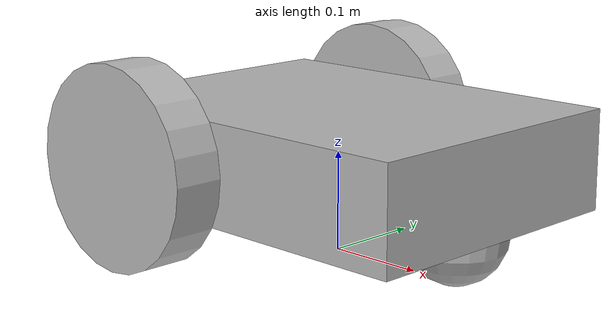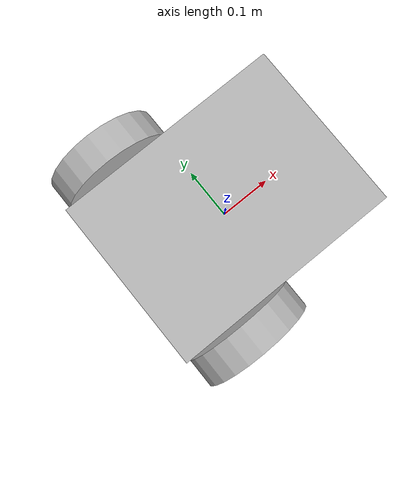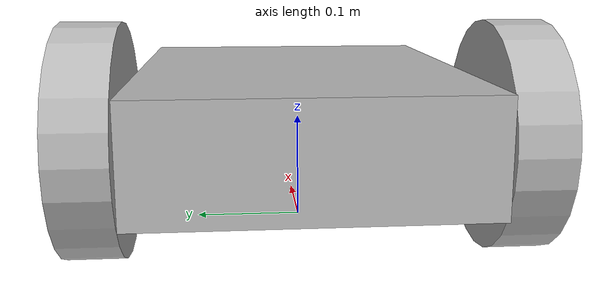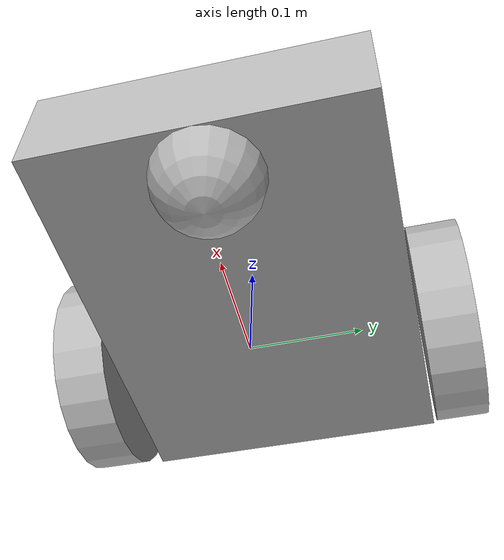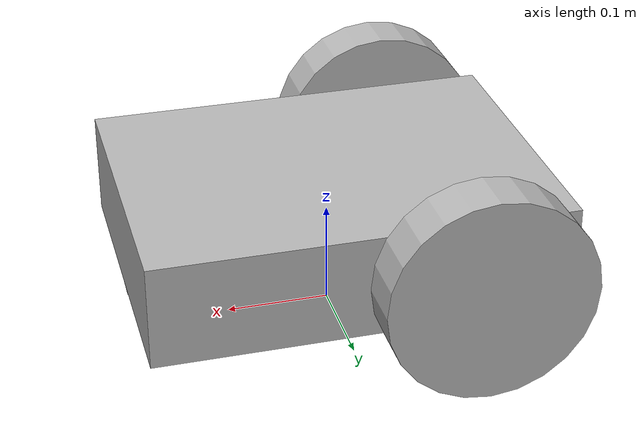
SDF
<?xml version="1.0"?>
<sdf version="1.4">
  <model name="my_robot">
  <static>false</static>
  <link name='chassis'>
    <pose>0 0 0.1 0 0 0</pose>
    <collision name='collision'>
      <geometry>
        <box>
          <size>0.4 0.3 0.1</size>
        </box>
      </geometry>
    </collision>

    <visual name='visual'>
      <geometry>
        <box>
          <size>0.4 0.3 0.1</size>
        </box>
      </geometry>
    </visual>

    <collision name='caster_collision'>
      <pose>0.15 0 -0.05 0 0 0</pose>

      <geometry>
        <sphere>
          <radius>0.05</radius>
        </sphere>
      </geometry>

      <surface>
        <friction>
          <ode>
            <mu>0</mu>
            <mu2>0</mu2>
            <slip1>1.0</slip1>
            <slip2>1.0</slip2>
          </ode>
        </friction>
      </surface>
    </collision>

    <visual name='caster_visual'>
      <pose>0.15 0 -0.05 0 0 0</pose>
      <geometry>
        <sphere>
          <radius>0.05</radius>
        </sphere>
      </geometry>
    </visual>
   </link>
   <link name='left_wheel'>
   <pose>-0.1 -0.178 0.1 0 1.5707 1.5707</pose>
   <collision name='left_wheel_collision'>
     <geometry>
       <cylinder>
         <radius>0.1</radius>
         <length>0.05</length>
       </cylinder>
     </geometry>
   </collision>

   <visual name='left_wheel_visual'>
     <geometry>
       <cylinder>
         <radius>0.1</radius>
         <length>0.05</length>
       </cylinder>
     </geometry>
   </visual>
   </link>

   <link name='right_wheel'>
   <pose>-0.1 0.178 0.1 0 1.5707 1.5707</pose>
   <collision name='right_wheel_collision'>
     <geometry>
       <cylinder>
         <radius>0.1</radius>
         <length>0.05</length>
       </cylinder>
     </geometry>
   </collision>

   <visual name='right_wheel_visual'>
     <geometry>
       <cylinder>
         <radius>0.1</radius>
         <length>0.05</length>
       </cylinder>
     </geometry>
   </visual>
   </link>
   <joint type="revolute" name="left_wheel_hinge">
        <pose>0 0 0.025 0 0 0 0</pose>
        <child>left_wheel</child>
        <parent>chassis</parent>
        <axis>
          <xyz>0 1 0</xyz>
        </axis>
      </joint>

      <joint type="revolute" name="right_wheel_hinge">
        <pose>0 0 -0.025 0 0 0 0</pose>
        <child>right_wheel</child>
        <parent>chassis</parent>
        <axis>
          <xyz>0 1 0</xyz>
        </axis>
      </joint>

  </model>
</sdf>
